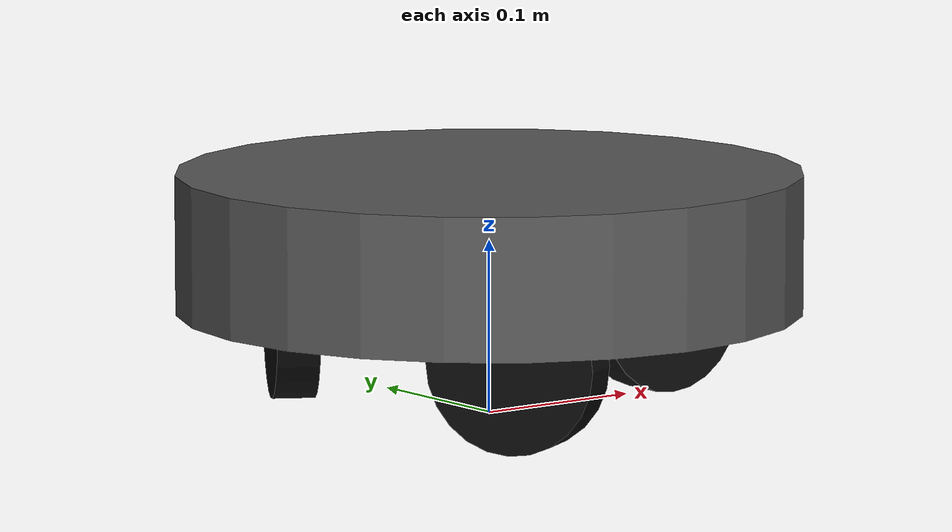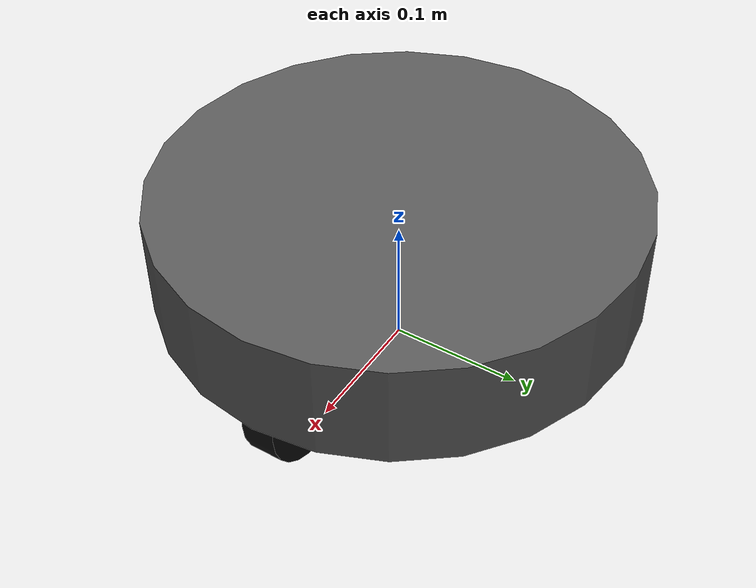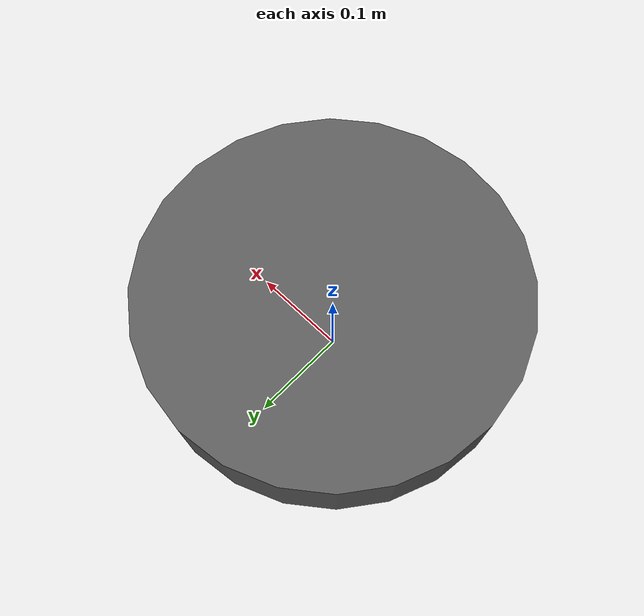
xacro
<?xml version="1.0"?>
<robot xmlns:xacro="http://www.ros.org/wiki/xacro" name="lekiwi_base">
  <xacro:arg name="hardware_mode" default="mock"/>
  <xacro:arg name="enable_motor_torque" default="false"/>

  <xacro:property name="base_radius" value="0.125"/>
  <xacro:property name="wheel_radius" value="0.05"/>
  <xacro:property name="wheel_width" value="0.025"/>

  <xacro:macro name="omni_wheel" params="name x y yaw">
    <link name="${name}_link">
      <visual>
        <origin rpy="1.57079632679 0 ${yaw}"/>
        <geometry>
          <cylinder radius="${wheel_radius}" length="${wheel_width}"/>
        </geometry>
        <material name="wheel_black">
          <color rgba="0.05 0.05 0.05 1"/>
        </material>
      </visual>
      <collision>
        <origin rpy="1.57079632679 0 ${yaw}"/>
        <geometry>
          <cylinder radius="${wheel_radius}" length="${wheel_width}"/>
        </geometry>
      </collision>
      <inertial>
        <mass value="0.15"/>
        <inertia ixx="0.0001" ixy="0" ixz="0" iyy="0.0001" iyz="0" izz="0.0001"/>
      </inertial>
    </link>
    <joint name="${name}_joint" type="continuous">
      <parent link="base_link"/>
      <child link="${name}_link"/>
      <origin xyz="${x} ${y} ${wheel_radius}" rpy="0 0 ${yaw}"/>
      <axis xyz="0 1 0"/>
    </joint>
  </xacro:macro>

  <link name="base_link">
    <visual>
      <origin xyz="0 0 0.10"/>
      <geometry>
        <cylinder radius="0.18" length="0.08"/>
      </geometry>
      <material name="base_gray">
        <color rgba="0.35 0.35 0.35 1"/>
      </material>
    </visual>
    <collision>
      <origin xyz="0 0 0.10"/>
      <geometry>
        <cylinder radius="0.18" length="0.08"/>
      </geometry>
    </collision>
    <inertial>
      <origin xyz="0 0 0.10"/>
      <mass value="4.0"/>
      <inertia ixx="0.03" ixy="0" ixz="0" iyy="0.03" iyz="0" izz="0.05"/>
    </inertial>
  </link>

  <!-- Counter-clockwise order used by omni_wheel_drive_controller. -->
  <xacro:omni_wheel
    name="base_back_wheel"
    x="${base_radius}"
    y="0.0"
    yaw="0.0"
  />
  <xacro:omni_wheel
    name="base_right_wheel"
    x="${-0.5 * base_radius}"
    y="${0.86602540378 * base_radius}"
    yaw="${2.09439510239}"
  />
  <xacro:omni_wheel
    name="base_left_wheel"
    x="${-0.5 * base_radius}"
    y="${-0.86602540378 * base_radius}"
    yaw="${4.18879020479}"
  />

  <xacro:include filename="$(find lekiwi_description)/ros2_control/lekiwi_base.ros2_control.xacro"/>
  <xacro:lekiwi_ros2_control
    hardware_mode="$(arg hardware_mode)"
    enable_motor_torque="$(arg enable_motor_torque)"
  />
</robot>
